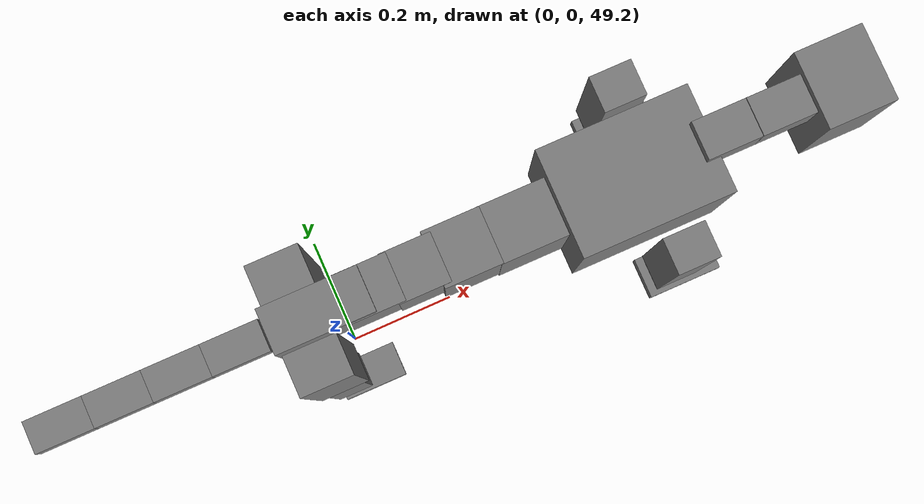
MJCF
<mujoco model="dog">

    <default>
        <joint armature="0.02" stiffness="1" damping="0.2" limited="true"/>
        <geom condim="3" friction="1 0.05 0.05" margin="0.01"/>
        <motor ctrllimited="true" ctrlrange="-1.0 1.0" forcelimited="true" gear="50"/>
    </default>

    <compiler inertiafromgeom="true" angle="radian"/>

    <option timestep="0.016" iterations="50" tolerance="1e-10" solver="Newton" jacobian="dense" cone="pyramidal"/>

    <size nconmax="20000" njmax="60000" nstack="5000000"/>
    <visual>
        <map force="0.1" zfar="30"/>
        <rgba haze="0.15 0.25 0.35 1"/>
        <quality shadowsize="2048"/>
        <global offwidth="800" offheight="800"/>
    </visual>

    <asset>
        <texture type="skybox" builtin="gradient" rgb1="0.3 0.5 0.7" rgb2="0 0 0" width="512" height="512"/>
        <texture name="texplane" type="2d" builtin="checker" rgb1=".2 .3 .4" rgb2=".1 0.15 0.2" width="512" height="512"
                 mark="cross" markrgb=".8 .8 .8"/>
        <texture name="texgeom" type="cube" builtin="flat" mark="cross" width="127" height="1278" rgb1="0.8 0.6 0.4"
                 rgb2="0.8 0.6 0.4" markrgb="1 1 1" random="0.01"/>

        <material name="matplane" reflectance="0.3" texture="texplane" texrepeat="1 1" texuniform="true"/>
        <material name="matgeom" texture="texgeom" texuniform="true" rgba="0.8 0.6 .4 1"/>
    </asset>

    <worldbody>
        <geom name="floor" pos="0 0 0" size="0 0 .25" type="plane" material="matplane" condim="3"/>

        <light directional="false" diffuse=".2 .2 .2" specular="0 0 0" pos="0 0 5" dir="0 0 -1" castshadow="false"/>
        <light mode="targetbodycom" target="torso" directional="false" diffuse=".8 .8 .8" specular="0.3 0.3 0.3"
               pos="0 0 4.0" dir="0 0 -1"/>

        <body name="root" pos="0 0 50">
            <freejoint name="root_1"/>
            <geom type="box" pos="0 0 -0.02" size="0.0774  0.0358  0.063" density="2030"/>

            <body name="spine1" pos="0.054 0 0">
                <joint name="spine1_y" axis="0 1 0" range="0 0.7" limited="true"/>
                <geom type="box" pos="0.02375 0 -0.03" size="0.04375  0.0375  0.05985" density="2030"/>

                <body name="spine2" pos="0.0612 0 0">
                    <joint name="spine2_y" axis="0 1 0" range="-0.15 0.15" limited="true"/>
                    <geom type="box" pos="0.03555  0  -0.04" size="0.04055  0.039  0.06615" density="2030"/>

                    <body name="spine3" pos="0.0730 0 0">
                        <joint name="spine3_y" axis="0 1 0" range="-0.15 0.15" limited="true"/>
                        <geom type="box" pos="0.03555  0  -0.057" size="0.04555  0.0445  0.081" density="2030"/>

                        <body name="spine4" pos="0.0780 0 0">
                            <joint name="spine4_y" axis="0 1 0" range="-0.15 0.15" limited="true"/>
                            <geom type="box" pos="0.05265  0  -0.07" size="0.05265  0.045  0.09135" density="2030"/>

                            <body name="torso" pos="0.1082 0 0">
                                <joint name="torso_y" axis="0 1 0" range="-0.15 0.15" limited="true"/>
                                <geom type="box" pos="0.11925  0  -0.085" size="0.11925  0.085  0.11745"
                                      density="2030"/>

                                <body name="neck1" pos="0.2160  0   0.0180">
                                    <joint name="neck1_y" axis="0 1 0" range="-1.2  -1" limited="true"/>
                                    <geom type="box" pos="0.0423  0  0" size="0.0423  0.03  0.036" density="2325"/>

                                    <body name="neck2" pos="0.0853  0  0">
                                        <joint name="neck2_y" axis="0 1 0" range="0.1  0" limited="true"/>
                                        <geom type="box" pos="0.0423  0  0" size="0.0423  0.03  0.036" density="2325"/>

                                        <body name="head" pos="0.0853  0  0">
                                            <joint name="head_y" axis="0 1 0" range="-0.3  -0.2" limited="true"/>
                                            <geom type="box" pos="0.0531  0  -0.055" size="0.0531  0.06  0.1044"
                                                  density="4030"/>

                                        </body>
                                    </body>
                                </body>

                                <body name="front_shoulder" pos="0.156  0   -0.0480">
                                    <joint name="front_shoulder_y" axis="0 1 0" range="-1 1.5" limited="true"/>
                                    <geom type="box" pos="0 0.13 -0.1019" size="0.0339  0.0290  0.1286" density="1158"/>
                                    <geom type="box" pos="0 -0.13 -0.1019" size="0.0339  0.0290  0.1286"
                                          density="1158"/>

                                    <body name="front_elbow" pos="0  0  -0.2038">
                                        <joint name="front_elbow_y" axis="0 1 0" range="-2 0" limited="true"/>
                                        <geom type="box" pos="0 0.13 -0.0535" size="0.0223  0.0228  0.0535"
                                              density="1081"/>
                                        <geom type="box" pos="0 -0.13 -0.0535" size="0.0223  0.0228  0.0535"
                                              density="1081"/>

                                        <body name="front_wrist" pos="0  0  -0.1070">
                                            <joint name="front_wrist_y" axis="0 1 0" range="-0.2 0" limited="true"/>
                                            <geom type="box" pos="0 0.13 -0.0333" size="0.0132  0.0146  0.0465"
                                                  density="1664"/>
                                            <geom type="box" pos="0 -0.13 -0.0333" size="0.0132  0.0146  0.0465"
                                                  density="1664"/>

                                            <body name="front_finger_end" pos="0  0  -0.0666">
                                                <joint name="front_finger_y" axis="0 1 0" range="-0.4 1"
                                                       limited="true"/>
                                                <geom type="box" pos="0.0346  0.13  0.0003"
                                                      size="0.0635  0.0346  0.0147" density="1515"/>
                                                <geom type="box" pos="0.0346  -0.13  0.0003"
                                                      size="0.0635  0.0346  0.0147" density="1515"/>

                                            </body>

                                        </body>
                                    </body>
                                </body>

                            </body>
                        </body>
                    </body>
                </body>
            </body>

            <body name="back_hip" pos="-0.03 0 -0.018">
                <joint name="back_hip_y" axis="0 1 0" range="-1.5 0.3" limited="true"/>
                <geom type="box" pos="0 0.07 -0.1648" size="0.0418  0.0328  0.1876" density="1154"/>
                <geom type="box" pos="0 -0.07 -0.1648" size="0.0418  0.0328  0.1876" density="1154"/>

                <body name="back_knee" pos="0  0  -0.3296">
                    <joint name="back_knee_y" axis="0 1 0" range="0 2.8" limited="true"/>
                    <geom type="box" pos="0 0.07 -0.1475" size="0.0320  0.0315  0.1630" density="1227"/>
                    <geom type="box" pos="0 -0.07 -0.1475" size="0.0320  0.0315  0.1630" density="1227"/>

                    <body name="back_ankle" pos="0  0  -0.2949">
                        <joint name="back_ankle_y" axis="0 1 0" range="-2.2 0" limited="true"/>
                        <geom type="box" pos="0 0.07 -0.0671" size="0.0203  0.0203  0.0784" density="1284"/>
                        <geom type="box" pos="0 -0.07 -0.0671" size="0.0203  0.0203  0.0784" density="1284"/>

                        <body name="back_toe_end" pos="0  0  -0.1343">
                            <joint name="back_toe_y" axis="0 1 0" range="-0.4 1" limited="true"/>
                            <geom type="box" pos="0.0330  0.07  -0.0006" size="0.0606  0.0330  0.0156" density="1515"/>
                            <geom type="box" pos="0.0330  -0.07  -0.0006" size="0.0606  0.0330  0.0156" density="1515"/>

                        </body>
                    </body>
                </body>
            </body>

            <body name="tail1" pos="-0.074 0 -0.006">
                <joint name="tail1_y" axis="0 1 0" range="-0.2 0.2" limited="true"/>
                <geom type="box" pos="-0.0536  0  0" size="0.045  0.025  0.0175" density="1587"/>

                <body name="tail2" pos="-0.09 0 0">
                    <joint name="tail2_y" axis="0 1 0" range="-0.2 0.2" limited="true"/>
                    <geom type="box" pos="-0.0536  0  0" size="0.045  0.025  0.0175" density="1587"/>

                    <body name="tail3" pos="-0.09 0 0">
                        <joint name="tail3_y" axis="0 1 0" range="-0.2 0.2" limited="true"/>
                        <geom type="box" pos="-0.0536  0  0" size="0.045  0.025  0.0175" density="1587"/>

                        <body name="tail4" pos="-0.09 0 0">
                            <joint name="tail4_y" axis="0 1 0" range="-0.2 0.2" limited="true"/>
                            <geom type="box" pos="-0.0536  0  0" size="0.045  0.025  0.0175" density="1587"/>

                        </body>
                    </body>
                </body>
            </body>
        </body>
    </worldbody>

    <actuator>
        <motor joint="spine1_y" forcerange="-150 150     "/>
        <motor joint="spine2_y" forcerange="-150 150     "/>
        <motor joint="spine3_y" forcerange="-150 150     "/>
        <motor joint="spine4_y" forcerange="-150 150     "/>
        <motor joint="torso_y" forcerange="-150 150     "/>
        <motor joint="neck1_y" forcerange="-100 100       "/>
        <motor joint="neck2_y" forcerange="-100 100       "/>
        <motor joint="head_y" forcerange="-150 150       "/>
        <motor joint="front_shoulder_y" forcerange="-149.31 143.88"/>
        <motor joint="front_elbow_y" forcerange="-145.58 120.12"/>
        <motor joint="front_wrist_y" forcerange="-50.75 66.34"/>
        <motor joint="front_finger_y" forcerange="-90.07 54.66"/>
        <motor joint="back_hip_y" forcerange="-398.19 239.20"/>
        <motor joint="back_knee_y" forcerange="-365.81 293.00"/>
        <motor joint="back_angle_y" forcerange="-103.13 120.90"/>
        <motor joint="back_toe_y" forcerange="-84.44 99.80"/>
        <motor joint="tail1_y" forcerange="-50 50     "/>
        <motor joint="tail2_y" forcerange="-50 50     "/>
        <motor joint="tail3_y" forcerange="-50 50     "/>
        <motor joint="tail4_y" forcerange="-50 50     "/>
    </actuator>
</mujoco>
